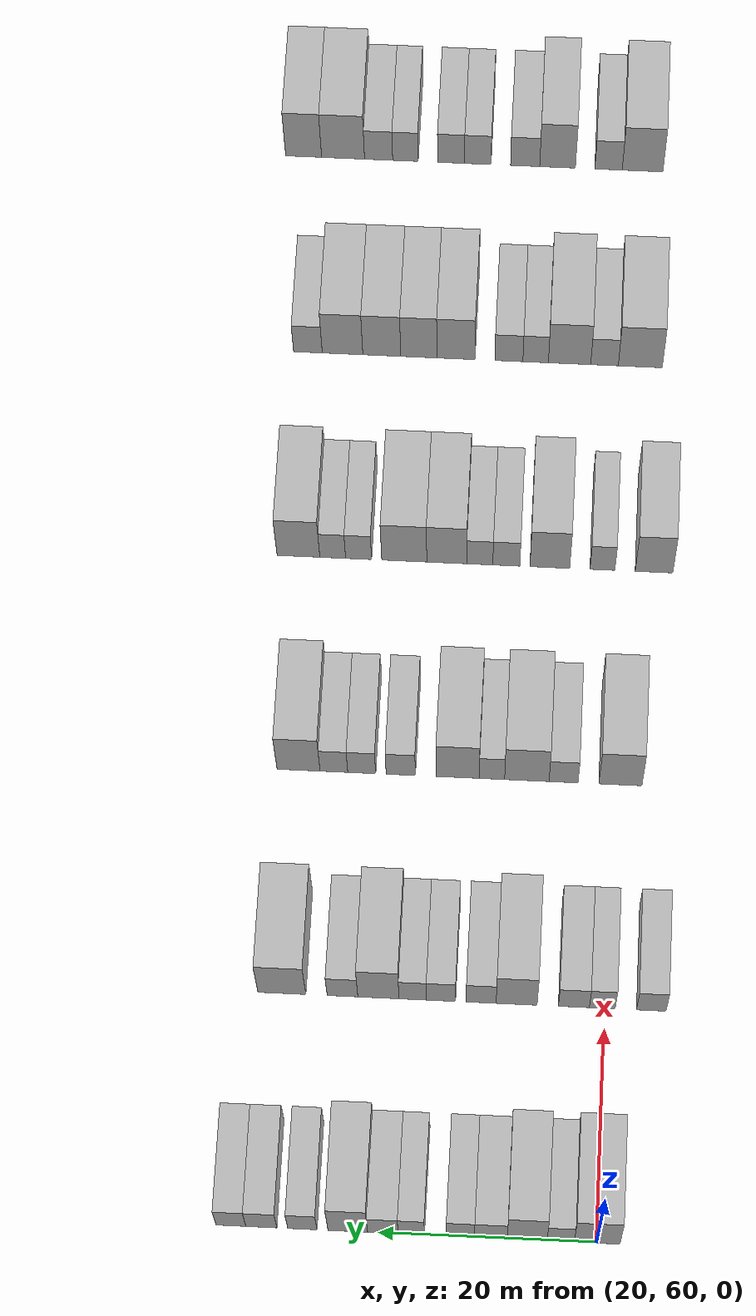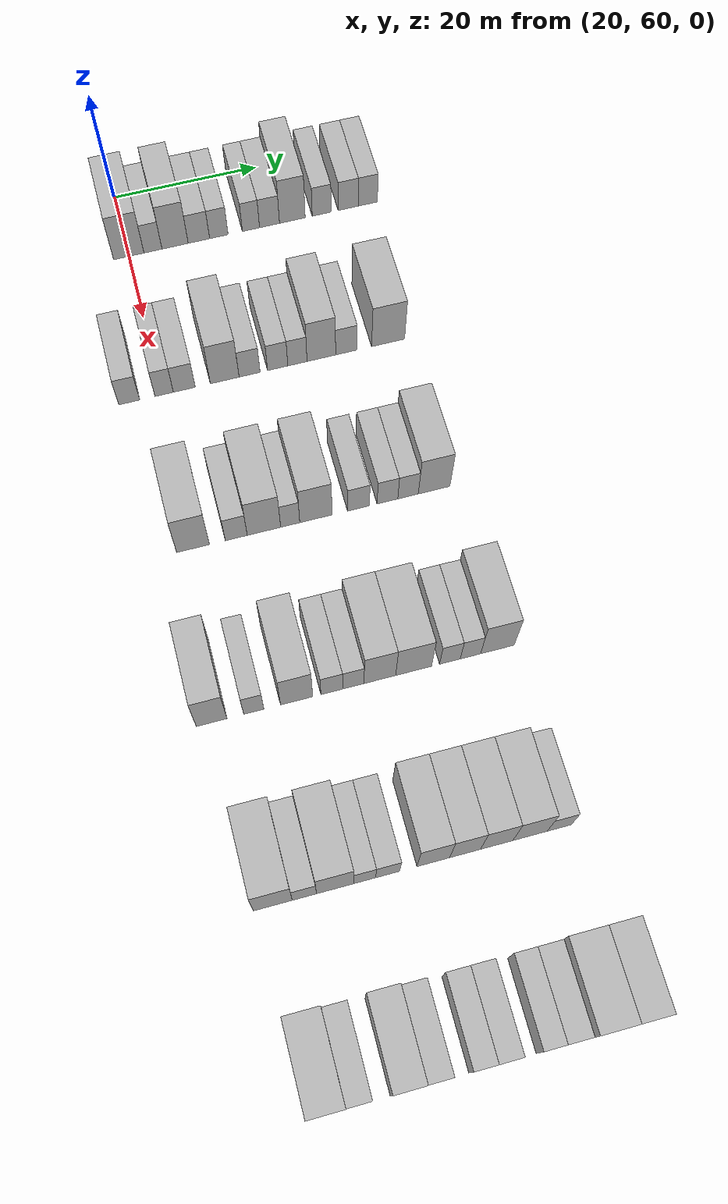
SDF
<sdf version="1.6">
 <world name="default">
  <model name="building_102">
   <static>1</static>
   <pose>25.0000 60.0029 0 0.000000 0.000000 0.000000</pose>
   <link name="link">
    <pose>0 0 4.50 0 0 0</pose>
    <collision name="collision"><geometry><box><size>10.0000 4.1814 9.0000</size></box></geometry></collision>
    <visual name="visual">
     <cast_shadows>0</cast_shadows>
     <geometry><box><size>10.0000 4.1814 9.0000</size></box></geometry>
     <material>
      <script>
       <uri>model://HANNAS_wall/materials/scripts</uri>
       <uri>model://HANNAS_wall/materials/textures</uri>
       <name>vrc/HANNAS_wall</name>
      </script>
     </material>
    </visual>
   </link>
  </model>
  <model name="building_103">
   <static>1</static>
   <pose>25.0000 63.3354 0 0.000000 0.000000 0.000000</pose>
   <link name="link">
    <pose>0 0 3.00 0 0 0</pose>
    <collision name="collision"><geometry><box><size>10.0000 2.4836 6.0000</size></box></geometry></collision>
    <visual name="visual">
     <cast_shadows>0</cast_shadows>
     <geometry><box><size>10.0000 2.4836 6.0000</size></box></geometry>
     <material>
      <script>
       <uri>model://HANNAS_wall/materials/scripts</uri>
       <uri>model://HANNAS_wall/materials/textures</uri>
       <name>vrc/HANNAS_wall</name>
      </script>
     </material>
    </visual>
   </link>
  </model>
  <model name="building_104">
   <static>1</static>
   <pose>25.0000 66.3945 0 0.000000 0.000000 0.000000</pose>
   <link name="link">
    <pose>0 0 4.50 0 0 0</pose>
    <collision name="collision"><geometry><box><size>10.0000 3.6346 9.0000</size></box></geometry></collision>
    <visual name="visual">
     <cast_shadows>0</cast_shadows>
     <geometry><box><size>10.0000 3.6346 9.0000</size></box></geometry>
     <material>
      <script>
       <uri>model://HANNAS_wall/materials/scripts</uri>
       <uri>model://HANNAS_wall/materials/textures</uri>
       <name>vrc/HANNAS_wall</name>
      </script>
     </material>
    </visual>
   </link>
  </model>
  <model name="building_105">
   <static>1</static>
   <pose>25.0000 69.7011 0 0.000000 0.000000 0.000000</pose>
   <link name="link">
    <pose>0 0 3.00 0 0 0</pose>
    <collision name="collision"><geometry><box><size>10.0000 2.9785 6.0000</size></box></geometry></collision>
    <visual name="visual">
     <cast_shadows>0</cast_shadows>
     <geometry><box><size>10.0000 2.9785 6.0000</size></box></geometry>
     <material>
      <script>
       <uri>model://HANNAS_wall/materials/scripts</uri>
       <uri>model://HANNAS_wall/materials/textures</uri>
       <name>vrc/HANNAS_wall</name>
      </script>
     </material>
    </visual>
   </link>
  </model>
  <model name="building_106">
   <static>1</static>
   <pose>25.0000 72.4769 0 0.000000 0.000000 0.000000</pose>
   <link name="link">
    <pose>0 0 3.00 0 0 0</pose>
    <collision name="collision"><geometry><box><size>10.0000 2.5731 6.0000</size></box></geometry></collision>
    <visual name="visual">
     <cast_shadows>0</cast_shadows>
     <geometry><box><size>10.0000 2.5731 6.0000</size></box></geometry>
     <material>
      <script>
       <uri>model://HANNAS_wall/materials/scripts</uri>
       <uri>model://HANNAS_wall/materials/textures</uri>
       <name>vrc/HANNAS_wall</name>
      </script>
     </material>
    </visual>
   </link>
  </model>
  <model name="building_107">
   <static>1</static>
   <pose>25.0000 76.9660 0 0.000000 0.000000 0.000000</pose>
   <link name="link">
    <pose>0 0 3.00 0 0 0</pose>
    <collision name="collision"><geometry><box><size>10.0000 2.4051 6.0000</size></box></geometry></collision>
    <visual name="visual">
     <cast_shadows>0</cast_shadows>
     <geometry><box><size>10.0000 2.4051 6.0000</size></box></geometry>
     <material>
      <script>
       <uri>model://HANNAS_wall/materials/scripts</uri>
       <uri>model://HANNAS_wall/materials/textures</uri>
       <name>vrc/HANNAS_wall</name>
      </script>
     </material>
    </visual>
   </link>
  </model>
  <model name="building_108">
   <static>1</static>
   <pose>25.0000 79.5678 0 0.000000 0.000000 0.000000</pose>
   <link name="link">
    <pose>0 0 3.00 0 0 0</pose>
    <collision name="collision"><geometry><box><size>10.0000 2.7986 6.0000</size></box></geometry></collision>
    <visual name="visual">
     <cast_shadows>0</cast_shadows>
     <geometry><box><size>10.0000 2.7986 6.0000</size></box></geometry>
     <material>
      <script>
       <uri>model://HANNAS_wall/materials/scripts</uri>
       <uri>model://HANNAS_wall/materials/textures</uri>
       <name>vrc/HANNAS_wall</name>
      </script>
     </material>
    </visual>
   </link>
  </model>
  <model name="building_109">
   <static>1</static>
   <pose>25.0000 82.7773 0 0.000000 0.000000 0.000000</pose>
   <link name="link">
    <pose>0 0 4.50 0 0 0</pose>
    <collision name="collision"><geometry><box><size>10.0000 3.6204 9.0000</size></box></geometry></collision>
    <visual name="visual">
     <cast_shadows>0</cast_shadows>
     <geometry><box><size>10.0000 3.6204 9.0000</size></box></geometry>
     <material>
      <script>
       <uri>model://HANNAS_wall/materials/scripts</uri>
       <uri>model://HANNAS_wall/materials/textures</uri>
       <name>vrc/HANNAS_wall</name>
      </script>
     </material>
    </visual>
   </link>
  </model>
  <model name="building_110">
   <static>1</static>
   <pose>25.0000 86.9263 0 0.000000 0.000000 0.000000</pose>
   <link name="link">
    <pose>0 0 3.00 0 0 0</pose>
    <collision name="collision"><geometry><box><size>10.0000 2.6775 6.0000</size></box></geometry></collision>
    <visual name="visual">
     <cast_shadows>0</cast_shadows>
     <geometry><box><size>10.0000 2.6775 6.0000</size></box></geometry>
     <material>
      <script>
       <uri>model://HANNAS_wall/materials/scripts</uri>
       <uri>model://HANNAS_wall/materials/textures</uri>
       <name>vrc/HANNAS_wall</name>
      </script>
     </material>
    </visual>
   </link>
  </model>
  <model name="building_111">
   <static>1</static>
   <pose>25.0000 90.6845 0 0.000000 0.000000 0.000000</pose>
   <link name="link">
    <pose>0 0 3.00 0 0 0</pose>
    <collision name="collision"><geometry><box><size>10.0000 2.8389 6.0000</size></box></geometry></collision>
    <visual name="visual">
     <cast_shadows>0</cast_shadows>
     <geometry><box><size>10.0000 2.8389 6.0000</size></box></geometry>
     <material>
      <script>
       <uri>model://HANNAS_wall/materials/scripts</uri>
       <uri>model://HANNAS_wall/materials/textures</uri>
       <name>vrc/HANNAS_wall</name>
      </script>
     </material>
    </visual>
   </link>
  </model>
  <model name="building_112">
   <static>1</static>
   <pose>25.0000 93.4690 0 0.000000 0.000000 0.000000</pose>
   <link name="link">
    <pose>0 0 3.00 0 0 0</pose>
    <collision name="collision"><geometry><box><size>10.0000 2.7301 6.0000</size></box></geometry></collision>
    <visual name="visual">
     <cast_shadows>0</cast_shadows>
     <geometry><box><size>10.0000 2.7301 6.0000</size></box></geometry>
     <material>
      <script>
       <uri>model://HANNAS_wall/materials/scripts</uri>
       <uri>model://HANNAS_wall/materials/textures</uri>
       <name>vrc/HANNAS_wall</name>
      </script>
     </material>
    </visual>
   </link>
  </model>
  <model name="building_286">
   <static>1</static>
   <pose>47.0000 55.6669 0 0.000000 0.000000 0.000000</pose>
   <link name="link">
    <pose>0 0 3.00 0 0 0</pose>
    <collision name="collision"><geometry><box><size>10.0000 2.7581 6.0000</size></box></geometry></collision>
    <visual name="visual">
     <cast_shadows>0</cast_shadows>
     <geometry><box><size>10.0000 2.7581 6.0000</size></box></geometry>
     <material>
      <script>
       <uri>model://HANNAS_wall/materials/scripts</uri>
       <uri>model://HANNAS_wall/materials/textures</uri>
       <name>vrc/HANNAS_wall</name>
      </script>
     </material>
    </visual>
   </link>
  </model>
  <model name="building_287">
   <static>1</static>
   <pose>47.0000 60.2552 0 0.000000 0.000000 0.000000</pose>
   <link name="link">
    <pose>0 0 3.00 0 0 0</pose>
    <collision name="collision"><geometry><box><size>10.0000 2.4186 6.0000</size></box></geometry></collision>
    <visual name="visual">
     <cast_shadows>0</cast_shadows>
     <geometry><box><size>10.0000 2.4186 6.0000</size></box></geometry>
     <material>
      <script>
       <uri>model://HANNAS_wall/materials/scripts</uri>
       <uri>model://HANNAS_wall/materials/textures</uri>
       <name>vrc/HANNAS_wall</name>
      </script>
     </material>
    </visual>
   </link>
  </model>
  <model name="building_288">
   <static>1</static>
   <pose>47.0000 62.9069 0 0.000000 0.000000 0.000000</pose>
   <link name="link">
    <pose>0 0 3.00 0 0 0</pose>
    <collision name="collision"><geometry><box><size>10.0000 2.8848 6.0000</size></box></geometry></collision>
    <visual name="visual">
     <cast_shadows>0</cast_shadows>
     <geometry><box><size>10.0000 2.8848 6.0000</size></box></geometry>
     <material>
      <script>
       <uri>model://HANNAS_wall/materials/scripts</uri>
       <uri>model://HANNAS_wall/materials/textures</uri>
       <name>vrc/HANNAS_wall</name>
      </script>
     </material>
    </visual>
   </link>
  </model>
  <model name="building_289">
   <static>1</static>
   <pose>47.0000 68.2625 0 0.000000 0.000000 0.000000</pose>
   <link name="link">
    <pose>0 0 4.50 0 0 0</pose>
    <collision name="collision"><geometry><box><size>10.0000 3.8264 9.0000</size></box></geometry></collision>
    <visual name="visual">
     <cast_shadows>0</cast_shadows>
     <geometry><box><size>10.0000 3.8264 9.0000</size></box></geometry>
     <material>
      <script>
       <uri>model://HANNAS_wall/materials/scripts</uri>
       <uri>model://HANNAS_wall/materials/textures</uri>
       <name>vrc/HANNAS_wall</name>
      </script>
     </material>
    </visual>
   </link>
  </model>
  <model name="building_290">
   <static>1</static>
   <pose>47.0000 71.5749 0 0.000000 0.000000 0.000000</pose>
   <link name="link">
    <pose>0 0 3.00 0 0 0</pose>
    <collision name="collision"><geometry><box><size>10.0000 2.7983 6.0000</size></box></geometry></collision>
    <visual name="visual">
     <cast_shadows>0</cast_shadows>
     <geometry><box><size>10.0000 2.7983 6.0000</size></box></geometry>
     <material>
      <script>
       <uri>model://HANNAS_wall/materials/scripts</uri>
       <uri>model://HANNAS_wall/materials/textures</uri>
       <name>vrc/HANNAS_wall</name>
      </script>
     </material>
    </visual>
   </link>
  </model>
  <model name="building_291">
   <static>1</static>
   <pose>47.0000 75.3293 0 0.000000 0.000000 0.000000</pose>
   <link name="link">
    <pose>0 0 3.00 0 0 0</pose>
    <collision name="collision"><geometry><box><size>10.0000 2.7105 6.0000</size></box></geometry></collision>
    <visual name="visual">
     <cast_shadows>0</cast_shadows>
     <geometry><box><size>10.0000 2.7105 6.0000</size></box></geometry>
     <material>
      <script>
       <uri>model://HANNAS_wall/materials/scripts</uri>
       <uri>model://HANNAS_wall/materials/textures</uri>
       <name>vrc/HANNAS_wall</name>
      </script>
     </material>
    </visual>
   </link>
  </model>
  <model name="building_292">
   <static>1</static>
   <pose>47.0000 77.9734 0 0.000000 0.000000 0.000000</pose>
   <link name="link">
    <pose>0 0 3.00 0 0 0</pose>
    <collision name="collision"><geometry><box><size>10.0000 2.5777 6.0000</size></box></geometry></collision>
    <visual name="visual">
     <cast_shadows>0</cast_shadows>
     <geometry><box><size>10.0000 2.5777 6.0000</size></box></geometry>
     <material>
      <script>
       <uri>model://HANNAS_wall/materials/scripts</uri>
       <uri>model://HANNAS_wall/materials/textures</uri>
       <name>vrc/HANNAS_wall</name>
      </script>
     </material>
    </visual>
   </link>
  </model>
  <model name="building_293">
   <static>1</static>
   <pose>47.0000 81.1920 0 0.000000 0.000000 0.000000</pose>
   <link name="link">
    <pose>0 0 4.50 0 0 0</pose>
    <collision name="collision"><geometry><box><size>10.0000 3.8594 9.0000</size></box></geometry></collision>
    <visual name="visual">
     <cast_shadows>0</cast_shadows>
     <geometry><box><size>10.0000 3.8594 9.0000</size></box></geometry>
     <material>
      <script>
       <uri>model://HANNAS_wall/materials/scripts</uri>
       <uri>model://HANNAS_wall/materials/textures</uri>
       <name>vrc/HANNAS_wall</name>
      </script>
     </material>
    </visual>
   </link>
  </model>
  <model name="building_294">
   <static>1</static>
   <pose>47.0000 84.5589 0 0.000000 0.000000 0.000000</pose>
   <link name="link">
    <pose>0 0 3.00 0 0 0</pose>
    <collision name="collision"><geometry><box><size>10.0000 2.8746 6.0000</size></box></geometry></collision>
    <visual name="visual">
     <cast_shadows>0</cast_shadows>
     <geometry><box><size>10.0000 2.8746 6.0000</size></box></geometry>
     <material>
      <script>
       <uri>model://HANNAS_wall/materials/scripts</uri>
       <uri>model://HANNAS_wall/materials/textures</uri>
       <name>vrc/HANNAS_wall</name>
      </script>
     </material>
    </visual>
   </link>
  </model>
  <model name="building_295">
   <static>1</static>
   <pose>47.0000 90.2418 0 0.000000 0.000000 0.000000</pose>
   <link name="link">
    <pose>0 0 4.50 0 0 0</pose>
    <collision name="collision"><geometry><box><size>10.0000 4.4912 9.0000</size></box></geometry></collision>
    <visual name="visual">
     <cast_shadows>0</cast_shadows>
     <geometry><box><size>10.0000 4.4912 9.0000</size></box></geometry>
     <material>
      <script>
       <uri>model://HANNAS_wall/materials/scripts</uri>
       <uri>model://HANNAS_wall/materials/textures</uri>
       <name>vrc/HANNAS_wall</name>
      </script>
     </material>
    </visual>
   </link>
  </model>
  <model name="building_472">
   <static>1</static>
   <pose>69.0000 59.2427 0 0.000000 0.000000 0.000000</pose>
   <link name="link">
    <pose>0 0 4.50 0 0 0</pose>
    <collision name="collision"><geometry><box><size>10.0000 4.1184 9.0000</size></box></geometry></collision>
    <visual name="visual">
     <cast_shadows>0</cast_shadows>
     <geometry><box><size>10.0000 4.1184 9.0000</size></box></geometry>
     <material>
      <script>
       <uri>model://HANNAS_wall/materials/scripts</uri>
       <uri>model://HANNAS_wall/materials/textures</uri>
       <name>vrc/HANNAS_wall</name>
      </script>
     </material>
    </visual>
   </link>
  </model>
  <model name="building_473">
   <static>1</static>
   <pose>69.0000 64.6876 0 0.000000 0.000000 0.000000</pose>
   <link name="link">
    <pose>0 0 3.00 0 0 0</pose>
    <collision name="collision"><geometry><box><size>10.0000 2.7713 6.0000</size></box></geometry></collision>
    <visual name="visual">
     <cast_shadows>0</cast_shadows>
     <geometry><box><size>10.0000 2.7713 6.0000</size></box></geometry>
     <material>
      <script>
       <uri>model://HANNAS_wall/materials/scripts</uri>
       <uri>model://HANNAS_wall/materials/textures</uri>
       <name>vrc/HANNAS_wall</name>
      </script>
     </material>
    </visual>
   </link>
  </model>
  <model name="building_474">
   <static>1</static>
   <pose>69.0000 68.1983 0 0.000000 0.000000 0.000000</pose>
   <link name="link">
    <pose>0 0 4.50 0 0 0</pose>
    <collision name="collision"><geometry><box><size>10.0000 4.2503 9.0000</size></box></geometry></collision>
    <visual name="visual">
     <cast_shadows>0</cast_shadows>
     <geometry><box><size>10.0000 4.2503 9.0000</size></box></geometry>
     <material>
      <script>
       <uri>model://HANNAS_wall/materials/scripts</uri>
       <uri>model://HANNAS_wall/materials/textures</uri>
       <name>vrc/HANNAS_wall</name>
      </script>
     </material>
    </visual>
   </link>
  </model>
  <model name="building_475">
   <static>1</static>
   <pose>69.0000 71.5376 0 0.000000 0.000000 0.000000</pose>
   <link name="link">
    <pose>0 0 3.00 0 0 0</pose>
    <collision name="collision"><geometry><box><size>10.0000 2.4282 6.0000</size></box></geometry></collision>
    <visual name="visual">
     <cast_shadows>0</cast_shadows>
     <geometry><box><size>10.0000 2.4282 6.0000</size></box></geometry>
     <material>
      <script>
       <uri>model://HANNAS_wall/materials/scripts</uri>
       <uri>model://HANNAS_wall/materials/textures</uri>
       <name>vrc/HANNAS_wall</name>
      </script>
     </material>
    </visual>
   </link>
  </model>
  <model name="building_476">
   <static>1</static>
   <pose>69.0000 74.8098 0 0.000000 0.000000 0.000000</pose>
   <link name="link">
    <pose>0 0 4.50 0 0 0</pose>
    <collision name="collision"><geometry><box><size>10.0000 4.1162 9.0000</size></box></geometry></collision>
    <visual name="visual">
     <cast_shadows>0</cast_shadows>
     <geometry><box><size>10.0000 4.1162 9.0000</size></box></geometry>
     <material>
      <script>
       <uri>model://HANNAS_wall/materials/scripts</uri>
       <uri>model://HANNAS_wall/materials/textures</uri>
       <name>vrc/HANNAS_wall</name>
      </script>
     </material>
    </visual>
   </link>
  </model>
  <model name="building_477">
   <static>1</static>
   <pose>69.0000 80.2710 0 0.000000 0.000000 0.000000</pose>
   <link name="link">
    <pose>0 0 3.00 0 0 0</pose>
    <collision name="collision"><geometry><box><size>10.0000 2.8062 6.0000</size></box></geometry></collision>
    <visual name="visual">
     <cast_shadows>0</cast_shadows>
     <geometry><box><size>10.0000 2.8062 6.0000</size></box></geometry>
     <material>
      <script>
       <uri>model://HANNAS_wall/materials/scripts</uri>
       <uri>model://HANNAS_wall/materials/textures</uri>
       <name>vrc/HANNAS_wall</name>
      </script>
     </material>
    </visual>
   </link>
  </model>
  <model name="building_478">
   <static>1</static>
   <pose>69.0000 84.0158 0 0.000000 0.000000 0.000000</pose>
   <link name="link">
    <pose>0 0 3.00 0 0 0</pose>
    <collision name="collision"><geometry><box><size>10.0000 2.6835 6.0000</size></box></geometry></collision>
    <visual name="visual">
     <cast_shadows>0</cast_shadows>
     <geometry><box><size>10.0000 2.6835 6.0000</size></box></geometry>
     <material>
      <script>
       <uri>model://HANNAS_wall/materials/scripts</uri>
       <uri>model://HANNAS_wall/materials/textures</uri>
       <name>vrc/HANNAS_wall</name>
      </script>
     </material>
    </visual>
   </link>
  </model>
  <model name="building_479">
   <static>1</static>
   <pose>69.0000 86.6838 0 0.000000 0.000000 0.000000</pose>
   <link name="link">
    <pose>0 0 3.00 0 0 0</pose>
    <collision name="collision"><geometry><box><size>10.0000 2.6525 6.0000</size></box></geometry></collision>
    <visual name="visual">
     <cast_shadows>0</cast_shadows>
     <geometry><box><size>10.0000 2.6525 6.0000</size></box></geometry>
     <material>
      <script>
       <uri>model://HANNAS_wall/materials/scripts</uri>
       <uri>model://HANNAS_wall/materials/textures</uri>
       <name>vrc/HANNAS_wall</name>
      </script>
     </material>
    </visual>
   </link>
  </model>
  <model name="building_480">
   <static>1</static>
   <pose>69.0000 90.0731 0 0.000000 0.000000 0.000000</pose>
   <link name="link">
    <pose>0 0 4.50 0 0 0</pose>
    <collision name="collision"><geometry><box><size>10.0000 4.1261 9.0000</size></box></geometry></collision>
    <visual name="visual">
     <cast_shadows>0</cast_shadows>
     <geometry><box><size>10.0000 4.1261 9.0000</size></box></geometry>
     <material>
      <script>
       <uri>model://HANNAS_wall/materials/scripts</uri>
       <uri>model://HANNAS_wall/materials/textures</uri>
       <name>vrc/HANNAS_wall</name>
      </script>
     </material>
    </visual>
   </link>
  </model>
  <model name="building_658">
   <static>1</static>
   <pose>91.0000 56.6360 0 0.000000 0.000000 0.000000</pose>
   <link name="link">
    <pose>0 0 4.50 0 0 0</pose>
    <collision name="collision"><geometry><box><size>10.0000 3.6719 9.0000</size></box></geometry></collision>
    <visual name="visual">
     <cast_shadows>0</cast_shadows>
     <geometry><box><size>10.0000 3.6719 9.0000</size></box></geometry>
     <material>
      <script>
       <uri>model://HANNAS_wall/materials/scripts</uri>
       <uri>model://HANNAS_wall/materials/textures</uri>
       <name>vrc/HANNAS_wall</name>
      </script>
     </material>
    </visual>
   </link>
  </model>
  <model name="building_659">
   <static>1</static>
   <pose>91.0000 61.6836 0 0.000000 0.000000 0.000000</pose>
   <link name="link">
    <pose>0 0 3.00 0 0 0</pose>
    <collision name="collision"><geometry><box><size>10.0000 2.4233 6.0000</size></box></geometry></collision>
    <visual name="visual">
     <cast_shadows>0</cast_shadows>
     <geometry><box><size>10.0000 2.4233 6.0000</size></box></geometry>
     <material>
      <script>
       <uri>model://HANNAS_wall/materials/scripts</uri>
       <uri>model://HANNAS_wall/materials/textures</uri>
       <name>vrc/HANNAS_wall</name>
      </script>
     </material>
    </visual>
   </link>
  </model>
  <model name="building_660">
   <static>1</static>
   <pose>91.0000 66.8357 0 0.000000 0.000000 0.000000</pose>
   <link name="link">
    <pose>0 0 4.50 0 0 0</pose>
    <collision name="collision"><geometry><box><size>10.0000 3.8809 9.0000</size></box></geometry></collision>
    <visual name="visual">
     <cast_shadows>0</cast_shadows>
     <geometry><box><size>10.0000 3.8809 9.0000</size></box></geometry>
     <material>
      <script>
       <uri>model://HANNAS_wall/materials/scripts</uri>
       <uri>model://HANNAS_wall/materials/textures</uri>
       <name>vrc/HANNAS_wall</name>
      </script>
     </material>
    </visual>
   </link>
  </model>
  <model name="building_661">
   <static>1</static>
   <pose>91.0000 71.0973 0 0.000000 0.000000 0.000000</pose>
   <link name="link">
    <pose>0 0 3.00 0 0 0</pose>
    <collision name="collision"><geometry><box><size>10.0000 2.6424 6.0000</size></box></geometry></collision>
    <visual name="visual">
     <cast_shadows>0</cast_shadows>
     <geometry><box><size>10.0000 2.6424 6.0000</size></box></geometry>
     <material>
      <script>
       <uri>model://HANNAS_wall/materials/scripts</uri>
       <uri>model://HANNAS_wall/materials/textures</uri>
       <name>vrc/HANNAS_wall</name>
      </script>
     </material>
    </visual>
   </link>
  </model>
  <model name="building_662">
   <static>1</static>
   <pose>91.0000 73.7024 0 0.000000 0.000000 0.000000</pose>
   <link name="link">
    <pose>0 0 3.00 0 0 0</pose>
    <collision name="collision"><geometry><box><size>10.0000 2.5678 6.0000</size></box></geometry></collision>
    <visual name="visual">
     <cast_shadows>0</cast_shadows>
     <geometry><box><size>10.0000 2.5678 6.0000</size></box></geometry>
     <material>
      <script>
       <uri>model://HANNAS_wall/materials/scripts</uri>
       <uri>model://HANNAS_wall/materials/textures</uri>
       <name>vrc/HANNAS_wall</name>
      </script>
     </material>
    </visual>
   </link>
  </model>
  <model name="building_663">
   <static>1</static>
   <pose>91.0000 76.9365 0 0.000000 0.000000 0.000000</pose>
   <link name="link">
    <pose>0 0 4.50 0 0 0</pose>
    <collision name="collision"><geometry><box><size>10.0000 3.9004 9.0000</size></box></geometry></collision>
    <visual name="visual">
     <cast_shadows>0</cast_shadows>
     <geometry><box><size>10.0000 3.9004 9.0000</size></box></geometry>
     <material>
      <script>
       <uri>model://HANNAS_wall/materials/scripts</uri>
       <uri>model://HANNAS_wall/materials/textures</uri>
       <name>vrc/HANNAS_wall</name>
      </script>
     </material>
    </visual>
   </link>
  </model>
  <model name="building_664">
   <static>1</static>
   <pose>91.0000 81.0967 0 0.000000 0.000000 0.000000</pose>
   <link name="link">
    <pose>0 0 4.50 0 0 0</pose>
    <collision name="collision"><geometry><box><size>10.0000 4.4199 9.0000</size></box></geometry></collision>
    <visual name="visual">
     <cast_shadows>0</cast_shadows>
     <geometry><box><size>10.0000 4.4199 9.0000</size></box></geometry>
     <material>
      <script>
       <uri>model://HANNAS_wall/materials/scripts</uri>
       <uri>model://HANNAS_wall/materials/textures</uri>
       <name>vrc/HANNAS_wall</name>
      </script>
     </material>
    </visual>
   </link>
  </model>
  <model name="building_665">
   <static>1</static>
   <pose>91.0000 85.5809 0 0.000000 0.000000 0.000000</pose>
   <link name="link">
    <pose>0 0 3.00 0 0 0</pose>
    <collision name="collision"><geometry><box><size>10.0000 2.5485 6.0000</size></box></geometry></collision>
    <visual name="visual">
     <cast_shadows>0</cast_shadows>
     <geometry><box><size>10.0000 2.5485 6.0000</size></box></geometry>
     <material>
      <script>
       <uri>model://HANNAS_wall/materials/scripts</uri>
       <uri>model://HANNAS_wall/materials/textures</uri>
       <name>vrc/HANNAS_wall</name>
      </script>
     </material>
    </visual>
   </link>
  </model>
  <model name="building_666">
   <static>1</static>
   <pose>91.0000 88.1199 0 0.000000 0.000000 0.000000</pose>
   <link name="link">
    <pose>0 0 3.00 0 0 0</pose>
    <collision name="collision"><geometry><box><size>10.0000 2.5297 6.0000</size></box></geometry></collision>
    <visual name="visual">
     <cast_shadows>0</cast_shadows>
     <geometry><box><size>10.0000 2.5297 6.0000</size></box></geometry>
     <material>
      <script>
       <uri>model://HANNAS_wall/materials/scripts</uri>
       <uri>model://HANNAS_wall/materials/textures</uri>
       <name>vrc/HANNAS_wall</name>
      </script>
     </material>
    </visual>
   </link>
  </model>
  <model name="building_667">
   <static>1</static>
   <pose>91.0000 91.4789 0 0.000000 0.000000 0.000000</pose>
   <link name="link">
    <pose>0 0 4.50 0 0 0</pose>
    <collision name="collision"><geometry><box><size>10.0000 4.1883 9.0000</size></box></geometry></collision>
    <visual name="visual">
     <cast_shadows>0</cast_shadows>
     <geometry><box><size>10.0000 4.1883 9.0000</size></box></geometry>
     <material>
      <script>
       <uri>model://HANNAS_wall/materials/scripts</uri>
       <uri>model://HANNAS_wall/materials/textures</uri>
       <name>vrc/HANNAS_wall</name>
      </script>
     </material>
    </visual>
   </link>
  </model>
  <model name="building_849">
   <static>1</static>
   <pose>113.0000 58.6277 0 0.000000 0.000000 0.000000</pose>
   <link name="link">
    <pose>0 0 4.50 0 0 0</pose>
    <collision name="collision"><geometry><box><size>10.0000 4.3958 9.0000</size></box></geometry></collision>
    <visual name="visual">
     <cast_shadows>0</cast_shadows>
     <geometry><box><size>10.0000 4.3958 9.0000</size></box></geometry>
     <material>
      <script>
       <uri>model://HANNAS_wall/materials/scripts</uri>
       <uri>model://HANNAS_wall/materials/textures</uri>
       <name>vrc/HANNAS_wall</name>
      </script>
     </material>
    </visual>
   </link>
  </model>
  <model name="building_850">
   <static>1</static>
   <pose>113.0000 62.2053 0 0.000000 0.000000 0.000000</pose>
   <link name="link">
    <pose>0 0 3.00 0 0 0</pose>
    <collision name="collision"><geometry><box><size>10.0000 2.7595 6.0000</size></box></geometry></collision>
    <visual name="visual">
     <cast_shadows>0</cast_shadows>
     <geometry><box><size>10.0000 2.7595 6.0000</size></box></geometry>
     <material>
      <script>
       <uri>model://HANNAS_wall/materials/scripts</uri>
       <uri>model://HANNAS_wall/materials/textures</uri>
       <name>vrc/HANNAS_wall</name>
      </script>
     </material>
    </visual>
   </link>
  </model>
  <model name="building_851">
   <static>1</static>
   <pose>113.0000 65.7051 0 0.000000 0.000000 0.000000</pose>
   <link name="link">
    <pose>0 0 4.50 0 0 0</pose>
    <collision name="collision"><geometry><box><size>10.0000 4.2400 9.0000</size></box></geometry></collision>
    <visual name="visual">
     <cast_shadows>0</cast_shadows>
     <geometry><box><size>10.0000 4.2400 9.0000</size></box></geometry>
     <material>
      <script>
       <uri>model://HANNAS_wall/materials/scripts</uri>
       <uri>model://HANNAS_wall/materials/textures</uri>
       <name>vrc/HANNAS_wall</name>
      </script>
     </material>
    </visual>
   </link>
  </model>
  <model name="building_852">
   <static>1</static>
   <pose>113.0000 69.1000 0 0.000000 0.000000 0.000000</pose>
   <link name="link">
    <pose>0 0 3.00 0 0 0</pose>
    <collision name="collision"><geometry><box><size>10.0000 2.5498 6.0000</size></box></geometry></collision>
    <visual name="visual">
     <cast_shadows>0</cast_shadows>
     <geometry><box><size>10.0000 2.5498 6.0000</size></box></geometry>
     <material>
      <script>
       <uri>model://HANNAS_wall/materials/scripts</uri>
       <uri>model://HANNAS_wall/materials/textures</uri>
       <name>vrc/HANNAS_wall</name>
      </script>
     </material>
    </visual>
   </link>
  </model>
  <model name="building_853">
   <static>1</static>
   <pose>113.0000 71.7738 0 0.000000 0.000000 0.000000</pose>
   <link name="link">
    <pose>0 0 3.00 0 0 0</pose>
    <collision name="collision"><geometry><box><size>10.0000 2.7978 6.0000</size></box></geometry></collision>
    <visual name="visual">
     <cast_shadows>0</cast_shadows>
     <geometry><box><size>10.0000 2.7978 6.0000</size></box></geometry>
     <material>
      <script>
       <uri>model://HANNAS_wall/materials/scripts</uri>
       <uri>model://HANNAS_wall/materials/textures</uri>
       <name>vrc/HANNAS_wall</name>
      </script>
     </material>
    </visual>
   </link>
  </model>
  <model name="building_854">
   <static>1</static>
   <pose>113.0000 77.0776 0 0.000000 0.000000 0.000000</pose>
   <link name="link">
    <pose>0 0 4.50 0 0 0</pose>
    <collision name="collision"><geometry><box><size>10.0000 3.8097 9.0000</size></box></geometry></collision>
    <visual name="visual">
     <cast_shadows>0</cast_shadows>
     <geometry><box><size>10.0000 3.8097 9.0000</size></box></geometry>
     <material>
      <script>
       <uri>model://HANNAS_wall/materials/scripts</uri>
       <uri>model://HANNAS_wall/materials/textures</uri>
       <name>vrc/HANNAS_wall</name>
      </script>
     </material>
    </visual>
   </link>
  </model>
  <model name="building_855">
   <static>1</static>
   <pose>113.0000 80.7971 0 0.000000 0.000000 0.000000</pose>
   <link name="link">
    <pose>0 0 4.50 0 0 0</pose>
    <collision name="collision"><geometry><box><size>10.0000 3.6294 9.0000</size></box></geometry></collision>
    <visual name="visual">
     <cast_shadows>0</cast_shadows>
     <geometry><box><size>10.0000 3.6294 9.0000</size></box></geometry>
     <material>
      <script>
       <uri>model://HANNAS_wall/materials/scripts</uri>
       <uri>model://HANNAS_wall/materials/textures</uri>
       <name>vrc/HANNAS_wall</name>
      </script>
     </material>
    </visual>
   </link>
  </model>
  <model name="building_856">
   <static>1</static>
   <pose>113.0000 84.5155 0 0.000000 0.000000 0.000000</pose>
   <link name="link">
    <pose>0 0 4.50 0 0 0</pose>
    <collision name="collision"><geometry><box><size>10.0000 3.8074 9.0000</size></box></geometry></collision>
    <visual name="visual">
     <cast_shadows>0</cast_shadows>
     <geometry><box><size>10.0000 3.8074 9.0000</size></box></geometry>
     <material>
      <script>
       <uri>model://HANNAS_wall/materials/scripts</uri>
       <uri>model://HANNAS_wall/materials/textures</uri>
       <name>vrc/HANNAS_wall</name>
      </script>
     </material>
    </visual>
   </link>
  </model>
  <model name="building_857">
   <static>1</static>
   <pose>113.0000 88.4548 0 0.000000 0.000000 0.000000</pose>
   <link name="link">
    <pose>0 0 4.50 0 0 0</pose>
    <collision name="collision"><geometry><box><size>10.0000 4.0712 9.0000</size></box></geometry></collision>
    <visual name="visual">
     <cast_shadows>0</cast_shadows>
     <geometry><box><size>10.0000 4.0712 9.0000</size></box></geometry>
     <material>
      <script>
       <uri>model://HANNAS_wall/materials/scripts</uri>
       <uri>model://HANNAS_wall/materials/textures</uri>
       <name>vrc/HANNAS_wall</name>
      </script>
     </material>
    </visual>
   </link>
  </model>
  <model name="building_858">
   <static>1</static>
   <pose>113.0000 91.9271 0 0.000000 0.000000 0.000000</pose>
   <link name="link">
    <pose>0 0 3.00 0 0 0</pose>
    <collision name="collision"><geometry><box><size>10.0000 2.8732 6.0000</size></box></geometry></collision>
    <visual name="visual">
     <cast_shadows>0</cast_shadows>
     <geometry><box><size>10.0000 2.8732 6.0000</size></box></geometry>
     <material>
      <script>
       <uri>model://HANNAS_wall/materials/scripts</uri>
       <uri>model://HANNAS_wall/materials/textures</uri>
       <name>vrc/HANNAS_wall</name>
      </script>
     </material>
    </visual>
   </link>
  </model>
  <model name="building_1037">
   <static>1</static>
   <pose>135.0000 59.0298 0 0.000000 0.000000 0.000000</pose>
   <link name="link">
    <pose>0 0 4.50 0 0 0</pose>
    <collision name="collision"><geometry><box><size>10.0000 4.1584 9.0000</size></box></geometry></collision>
    <visual name="visual">
     <cast_shadows>0</cast_shadows>
     <geometry><box><size>10.0000 4.1584 9.0000</size></box></geometry>
     <material>
      <script>
       <uri>model://HANNAS_wall/materials/scripts</uri>
       <uri>model://HANNAS_wall/materials/textures</uri>
       <name>vrc/HANNAS_wall</name>
      </script>
     </material>
    </visual>
   </link>
  </model>
  <model name="building_1038">
   <static>1</static>
   <pose>135.0000 62.5057 0 0.000000 0.000000 0.000000</pose>
   <link name="link">
    <pose>0 0 3.00 0 0 0</pose>
    <collision name="collision"><geometry><box><size>10.0000 2.7935 6.0000</size></box></geometry></collision>
    <visual name="visual">
     <cast_shadows>0</cast_shadows>
     <geometry><box><size>10.0000 2.7935 6.0000</size></box></geometry>
     <material>
      <script>
       <uri>model://HANNAS_wall/materials/scripts</uri>
       <uri>model://HANNAS_wall/materials/textures</uri>
       <name>vrc/HANNAS_wall</name>
      </script>
     </material>
    </visual>
   </link>
  </model>
  <model name="building_1039">
   <static>1</static>
   <pose>135.0000 67.7289 0 0.000000 0.000000 0.000000</pose>
   <link name="link">
    <pose>0 0 4.50 0 0 0</pose>
    <collision name="collision"><geometry><box><size>10.0000 3.6527 9.0000</size></box></geometry></collision>
    <visual name="visual">
     <cast_shadows>0</cast_shadows>
     <geometry><box><size>10.0000 3.6527 9.0000</size></box></geometry>
     <material>
      <script>
       <uri>model://HANNAS_wall/materials/scripts</uri>
       <uri>model://HANNAS_wall/materials/textures</uri>
       <name>vrc/HANNAS_wall</name>
      </script>
     </material>
    </visual>
   </link>
  </model>
  <model name="building_1040">
   <static>1</static>
   <pose>135.0000 71.0449 0 0.000000 0.000000 0.000000</pose>
   <link name="link">
    <pose>0 0 3.00 0 0 0</pose>
    <collision name="collision"><geometry><box><size>10.0000 2.9794 6.0000</size></box></geometry></collision>
    <visual name="visual">
     <cast_shadows>0</cast_shadows>
     <geometry><box><size>10.0000 2.9794 6.0000</size></box></geometry>
     <material>
      <script>
       <uri>model://HANNAS_wall/materials/scripts</uri>
       <uri>model://HANNAS_wall/materials/textures</uri>
       <name>vrc/HANNAS_wall</name>
      </script>
     </material>
    </visual>
   </link>
  </model>
  <model name="building_1041">
   <static>1</static>
   <pose>135.0000 75.8888 0 0.000000 0.000000 0.000000</pose>
   <link name="link">
    <pose>0 0 3.00 0 0 0</pose>
    <collision name="collision"><geometry><box><size>10.0000 2.7084 6.0000</size></box></geometry></collision>
    <visual name="visual">
     <cast_shadows>0</cast_shadows>
     <geometry><box><size>10.0000 2.7084 6.0000</size></box></geometry>
     <material>
      <script>
       <uri>model://HANNAS_wall/materials/scripts</uri>
       <uri>model://HANNAS_wall/materials/textures</uri>
       <name>vrc/HANNAS_wall</name>
      </script>
     </material>
    </visual>
   </link>
  </model>
  <model name="building_1042">
   <static>1</static>
   <pose>135.0000 78.6228 0 0.000000 0.000000 0.000000</pose>
   <link name="link">
    <pose>0 0 3.00 0 0 0</pose>
    <collision name="collision"><geometry><box><size>10.0000 2.7595 6.0000</size></box></geometry></collision>
    <visual name="visual">
     <cast_shadows>0</cast_shadows>
     <geometry><box><size>10.0000 2.7595 6.0000</size></box></geometry>
     <material>
      <script>
       <uri>model://HANNAS_wall/materials/scripts</uri>
       <uri>model://HANNAS_wall/materials/textures</uri>
       <name>vrc/HANNAS_wall</name>
      </script>
     </material>
    </visual>
   </link>
  </model>
  <model name="building_1043">
   <static>1</static>
   <pose>135.0000 83.3085 0 0.000000 0.000000 0.000000</pose>
   <link name="link">
    <pose>0 0 3.00 0 0 0</pose>
    <collision name="collision"><geometry><box><size>10.0000 2.6119 6.0000</size></box></geometry></collision>
    <visual name="visual">
     <cast_shadows>0</cast_shadows>
     <geometry><box><size>10.0000 2.6119 6.0000</size></box></geometry>
     <material>
      <script>
       <uri>model://HANNAS_wall/materials/scripts</uri>
       <uri>model://HANNAS_wall/materials/textures</uri>
       <name>vrc/HANNAS_wall</name>
      </script>
     </material>
    </visual>
   </link>
  </model>
  <model name="building_1044">
   <static>1</static>
   <pose>135.0000 86.0564 0 0.000000 0.000000 0.000000</pose>
   <link name="link">
    <pose>0 0 3.00 0 0 0</pose>
    <collision name="collision"><geometry><box><size>10.0000 2.8839 6.0000</size></box></geometry></collision>
    <visual name="visual">
     <cast_shadows>0</cast_shadows>
     <geometry><box><size>10.0000 2.8839 6.0000</size></box></geometry>
     <material>
      <script>
       <uri>model://HANNAS_wall/materials/scripts</uri>
       <uri>model://HANNAS_wall/materials/textures</uri>
       <name>vrc/HANNAS_wall</name>
      </script>
     </material>
    </visual>
   </link>
  </model>
  <model name="building_1045">
   <static>1</static>
   <pose>135.0000 89.7010 0 0.000000 0.000000 0.000000</pose>
   <link name="link">
    <pose>0 0 4.50 0 0 0</pose>
    <collision name="collision"><geometry><box><size>10.0000 4.4052 9.0000</size></box></geometry></collision>
    <visual name="visual">
     <cast_shadows>0</cast_shadows>
     <geometry><box><size>10.0000 4.4052 9.0000</size></box></geometry>
     <material>
      <script>
       <uri>model://HANNAS_wall/materials/scripts</uri>
       <uri>model://HANNAS_wall/materials/textures</uri>
       <name>vrc/HANNAS_wall</name>
      </script>
     </material>
    </visual>
   </link>
  </model>
  <model name="building_1046">
   <static>1</static>
   <pose>135.0000 93.7454 0 0.000000 0.000000 0.000000</pose>
   <link name="link">
    <pose>0 0 4.50 0 0 0</pose>
    <collision name="collision"><geometry><box><size>10.0000 3.6837 9.0000</size></box></geometry></collision>
    <visual name="visual">
     <cast_shadows>0</cast_shadows>
     <geometry><box><size>10.0000 3.6837 9.0000</size></box></geometry>
     <material>
      <script>
       <uri>model://HANNAS_wall/materials/scripts</uri>
       <uri>model://HANNAS_wall/materials/textures</uri>
       <name>vrc/HANNAS_wall</name>
      </script>
     </material>
    </visual>
   </link>
  </model>
 </world>
</sdf>
